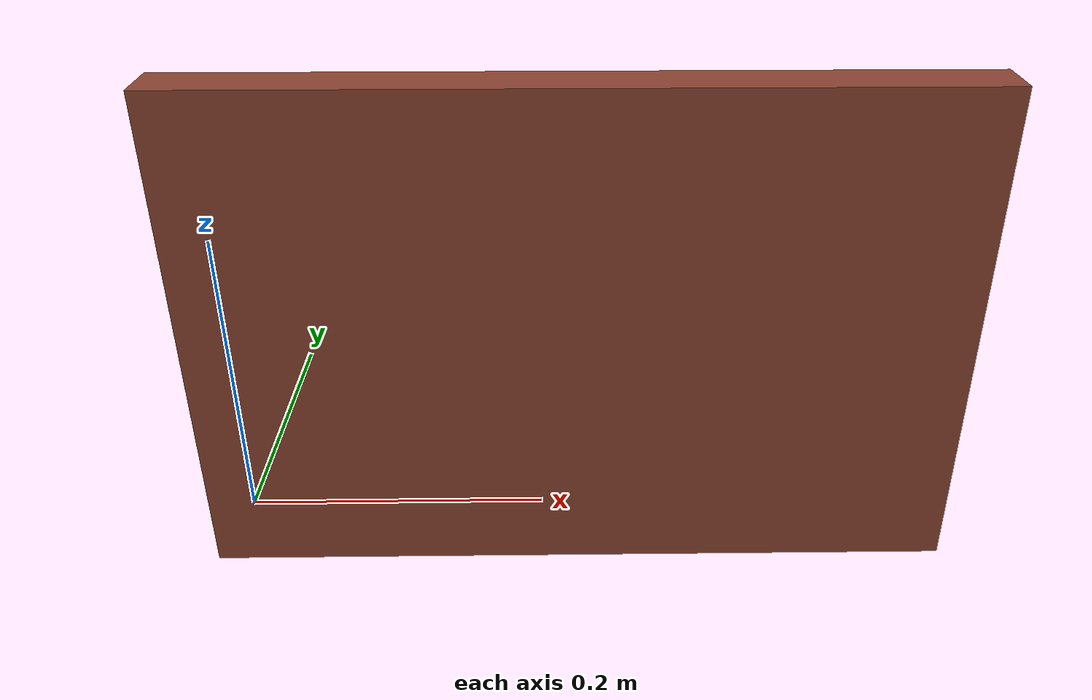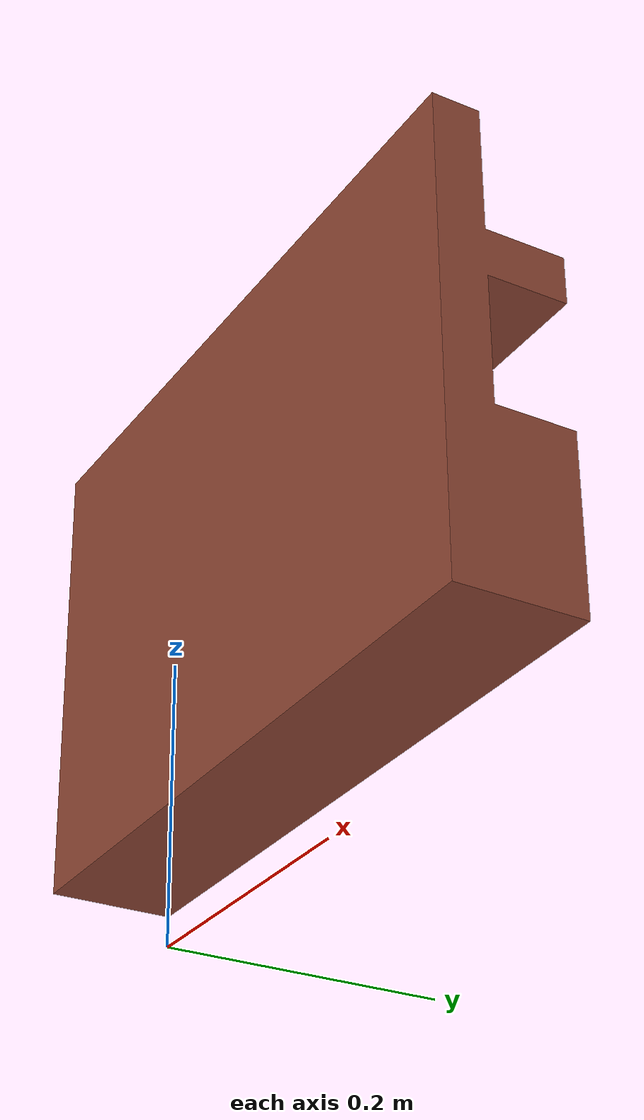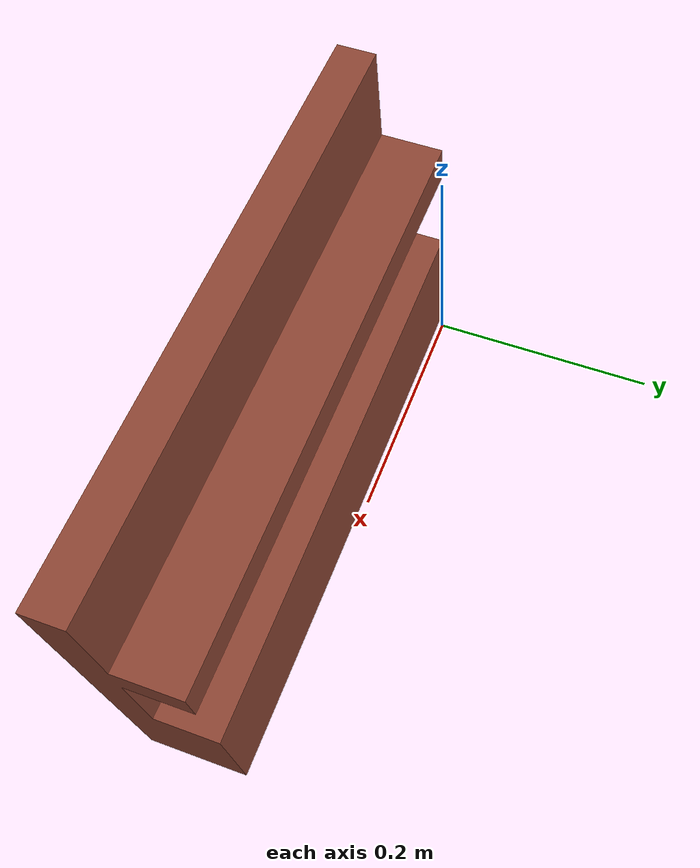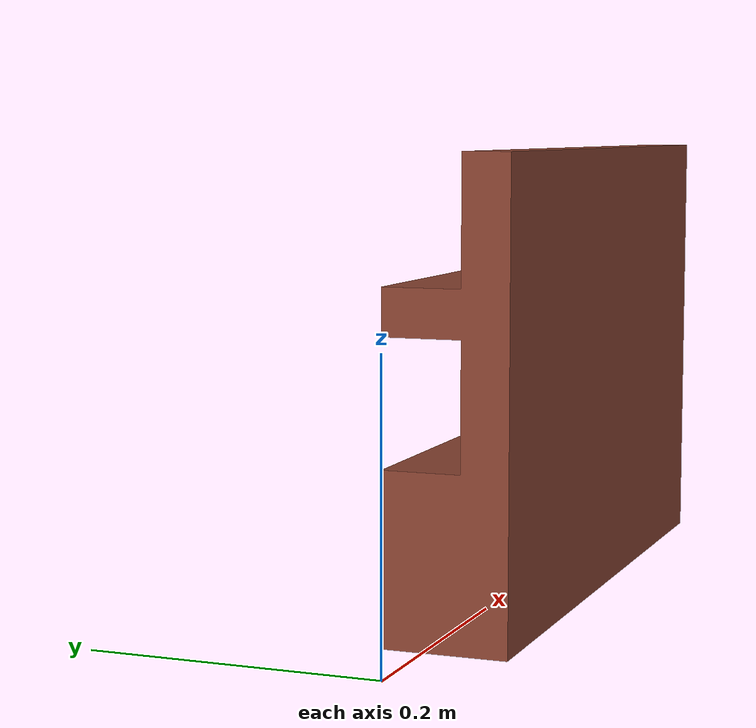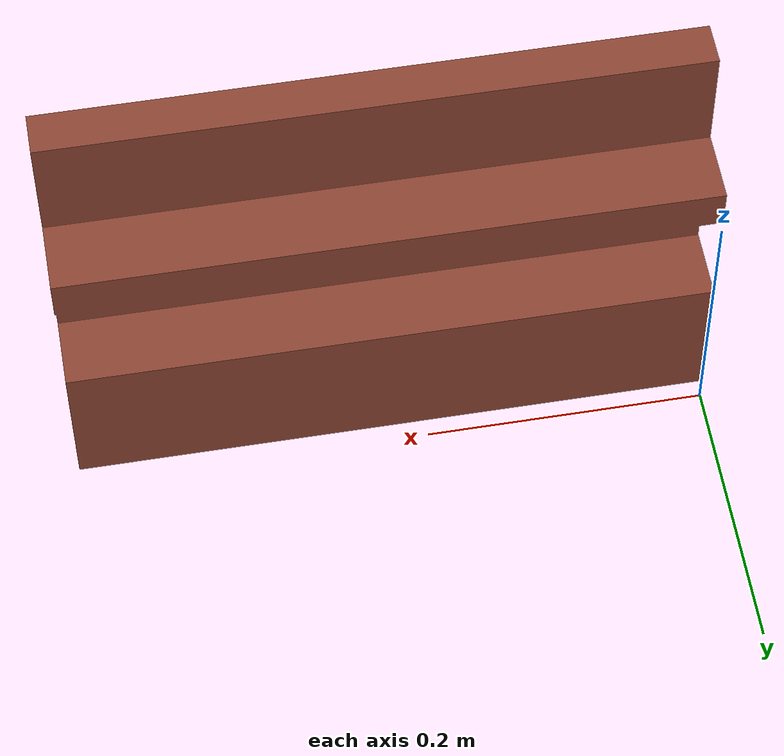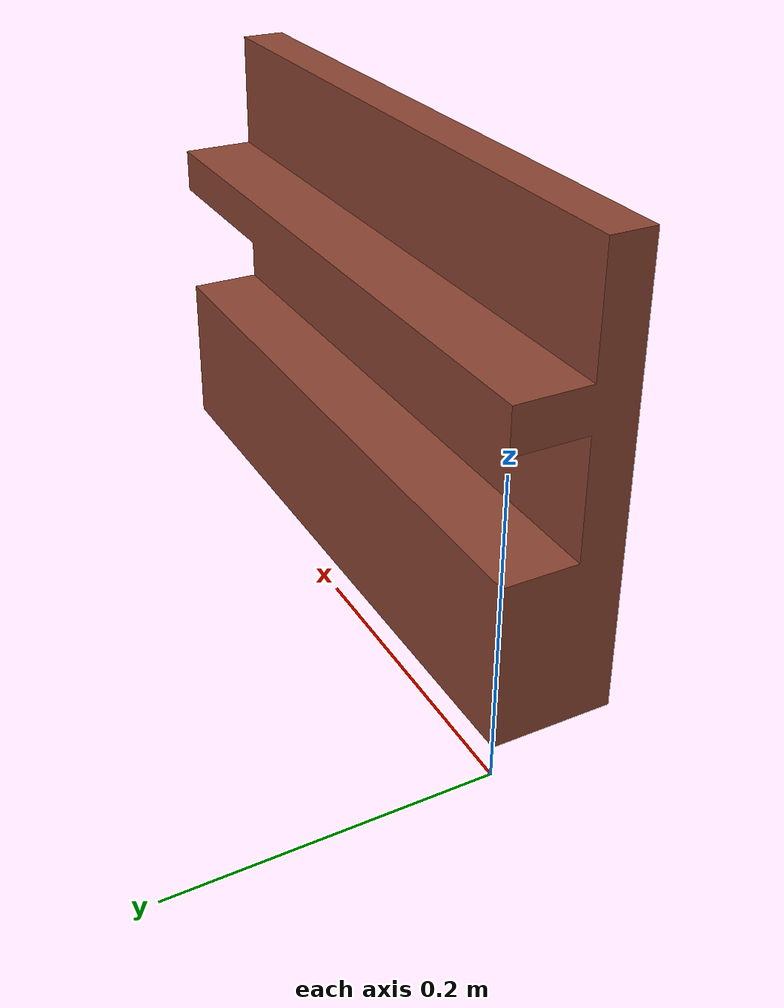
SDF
<?xml version="1.0"?>
<sdf version="1.10">
  <model name="shelf_half_L_3">
    <static>true</static>
    <link name="link">
      <visual name="visual">
        <geometry>
          <mesh>
            <uri>./models/shelf_half_L.dae</uri>
          </mesh>
        </geometry>
        <material>
          <ambient>0.55 0.27 0.20 1</ambient>
          <diffuse>0.55 0.27 0.20 1</diffuse>
          <specular>0.1 0.1 0.1 1</specular>
          <emissive>0 0 0 1</emissive>
        </material>
      </visual>
      <collision name="collision">
        <geometry>
          <mesh>
            <uri>./models/shelf_half_L.dae</uri>
          </mesh>
        </geometry>
      </collision>
    </link>
    <pose>0 0 0 0 0 0</pose>
  </model>
</sdf>
